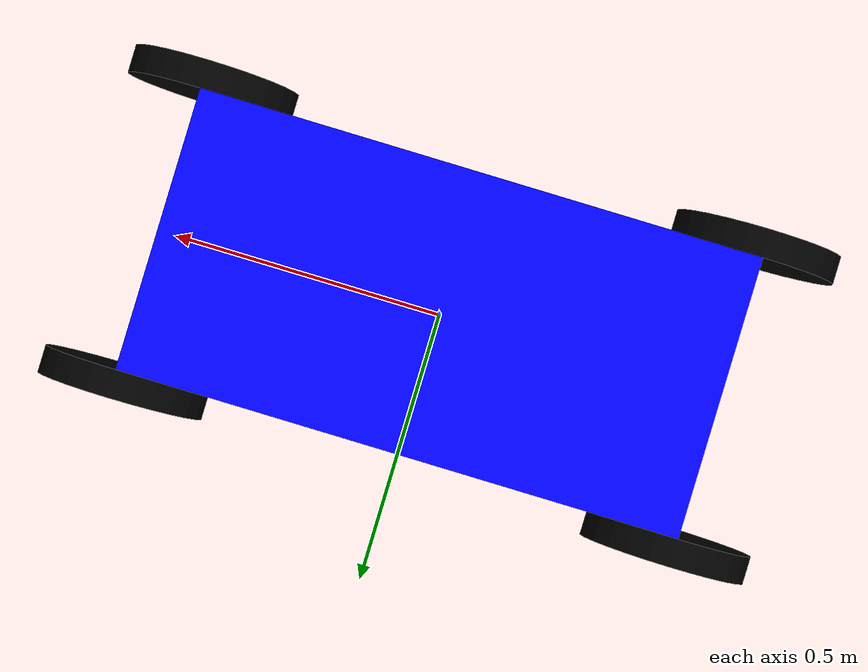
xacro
<?xml version="1.0"?>
<robot xmlns:xacro="http://www.ros.org/wiki/xacro" name="four_wheeled_robot">

    <!-- Arguments -->
    <xacro:arg name="prefix" default=""/>

    <!-- Define materials -->
    <material name="blue">
        <color rgba="0 0 1 1"/>
    </material>

    <material name="black">
        <color rgba="0 0 0 1"/>
    </material>

    <!-- Base Link -->
    <link name="base_link">
        <visual>
            <origin xyz="0 0 0.15"/>
            <geometry>
                <box size="1.0 0.5 0.2"/>
            </geometry>
            <material name="blue"/>
        </visual>
        <collision>
            <origin xyz="0 0 0.15"/>
            <geometry>
                <box size="1.0 0.5 0.2"/>
            </geometry>
        </collision>
        <inertial>
            <mass value="10"/>
            <origin xyz="0 0 0.15"/>
            <inertia ixx="0.583" ixy="0" ixz="0"
                    iyy="1.083" iyz="0"
                    izz="1.583"/>
        </inertial>
    </link>

    <!-- Front Right Wheel -->
    <link name="front_right_wheel">
        <visual>
            <geometry>
                <cylinder radius="0.15" length="0.05"/>
            </geometry>
            <material name="black"/>
        </visual>
        <collision>
            <geometry>
                <cylinder radius="0.15" length="0.05"/>
            </geometry>
        </collision>
        <inertial>
            <mass value="1"/>
            <origin xyz="0 0 0"/>
            <inertia ixx="0.002858" ixy="0" ixz="0"
                    iyy="0.002858" iyz="0"
                    izz="0.005625"/>
        </inertial>
    </link>

<!-- Front Right Wheel -->
<joint name="front_right_wheel_joint" type="continuous">
    <parent link="base_link"/>
    <child link="front_right_wheel"/>
    <origin xyz="0.5 -0.275 0.1" rpy="-${pi/2} 0 0"/>  <!-- Changed rpy -->
    <axis xyz="0 0 1"/>  <!-- Changed axis -->
</joint>

    <!-- Front Left Wheel -->
    <link name="front_left_wheel">
        <visual>
            <geometry>
                <cylinder radius="0.15" length="0.05"/>
            </geometry>
            <material name="black"/>
        </visual>
        <collision>
            <geometry>
                <cylinder radius="0.15" length="0.05"/>
            </geometry>
        </collision>
        <inertial>
            <mass value="1"/>
            <origin xyz="0 0 0"/>
            <inertia ixx="0.002858" ixy="0" ixz="0"
                    iyy="0.002858" iyz="0"
                    izz="0.005625"/>
        </inertial>
    </link>

<!-- Front Left Wheel -->
<joint name="front_left_wheel_joint" type="continuous">
    <parent link="base_link"/>
    <child link="front_left_wheel"/>
    <origin xyz="0.5 0.275 0.1" rpy="-${pi/2} 0 0"/>  <!-- Changed rpy -->
    <axis xyz="0 0 1"/>  <!-- Changed axis -->
</joint>

    <!-- Rear Right Wheel -->
    <link name="rear_right_wheel">
        <visual>
            <geometry>
                <cylinder radius="0.15" length="0.05"/>
            </geometry>
            <material name="black"/>
        </visual>
        <collision>
            <geometry>
                <cylinder radius="0.15" length="0.05"/>
            </geometry>
        </collision>
        <inertial>
            <mass value="1"/>
            <origin xyz="0 0 0"/>
            <inertia ixx="0.002858" ixy="0" ixz="0"
                    iyy="0.002858" iyz="0"
                    izz="0.005625"/>
        </inertial>
    </link>
<!-- Rear Right Wheel -->
<joint name="rear_right_wheel_joint" type="continuous">
    <parent link="base_link"/>
    <child link="rear_right_wheel"/>
    <origin xyz="-0.5 -0.275 0.1" rpy="-${pi/2} 0 0"/>  <!-- Changed rpy -->
    <axis xyz="0 0 1"/>  <!-- Changed axis -->
</joint>

    <!-- Rear Left Wheel -->
    <link name="rear_left_wheel">
        <visual>
            <geometry>
                <cylinder radius="0.15" length="0.05"/>
            </geometry>
            <material name="black"/>
        </visual>
        <collision>
            <geometry>
                <cylinder radius="0.15" length="0.05"/>
            </geometry>
        </collision>
        <inertial>
            <mass value="1"/>
            <origin xyz="0 0 0"/>
            <inertia ixx="0.002858" ixy="0" ixz="0"
                    iyy="0.002858" iyz="0"
                    izz="0.005625"/>
        </inertial>
    </link>
<!-- Rear Left Wheel -->
<joint name="rear_left_wheel_joint" type="continuous">
    <parent link="base_link"/>
    <child link="rear_left_wheel"/>
    <origin xyz="-0.5 0.275 0.1" rpy="-${pi/2} 0 0"/>  <!-- Changed rpy -->
    <axis xyz="0 0 1"/>  <!-- Changed axis -->
</joint>

    <!-- ros2_control section -->
    <ros2_control name="GazeboSystem" type="system">
        <hardware>
            <plugin>gazebo_ros2_control/GazeboSystem</plugin>
        </hardware>

        <joint name="front_left_wheel_joint">
            <command_interface name="velocity">
                <param name="min">-10</param>
                <param name="max">10</param>
            </command_interface>
            <state_interface name="position"/>
            <state_interface name="velocity"/>
        </joint>

        <joint name="front_right_wheel_joint">
            <command_interface name="velocity">
                <param name="min">-10</param>
                <param name="max">10</param>
            </command_interface>
            <state_interface name="position"/>
            <state_interface name="velocity"/>
        </joint>

        <joint name="rear_left_wheel_joint">
            <command_interface name="velocity">
                <param name="min">-10</param>
                <param name="max">10</param>
            </command_interface>
            <state_interface name="position"/>
            <state_interface name="velocity"/>
        </joint>

        <joint name="rear_right_wheel_joint">
            <command_interface name="velocity">
                <param name="min">-10</param>
                <param name="max">10</param>
            </command_interface>
            <state_interface name="position"/>
            <state_interface name="velocity"/>
        </joint>
    </ros2_control>

    <!-- Gazebo plugin -->
    <gazebo>
        <plugin name="gazebo_ros2_control" filename="libgazebo_ros2_control.so">
            <parameters>$(find my_bot)/config/controllers.yaml</parameters>
        </plugin>
    </gazebo>

    <!-- Base color in Gazebo -->
    <gazebo reference="base_link">
        <material>Gazebo/Blue</material>
    </gazebo>

</robot>
